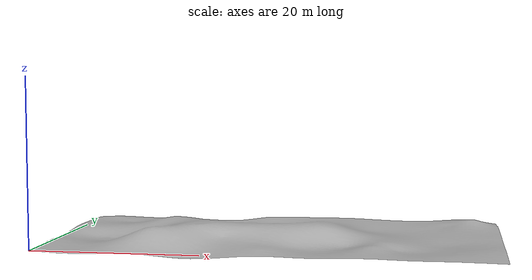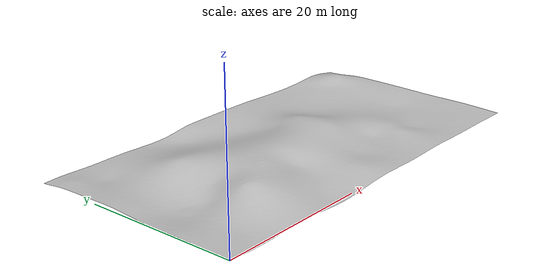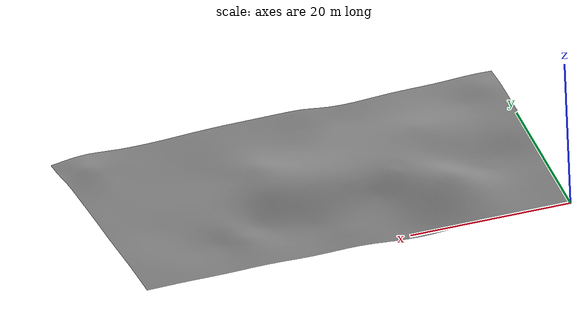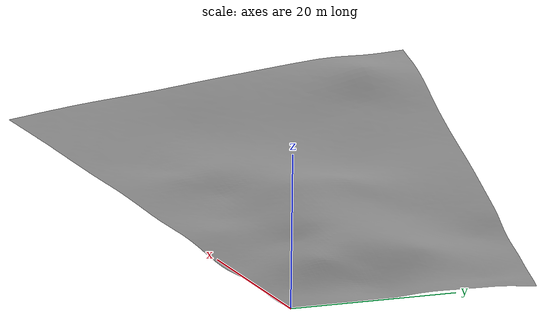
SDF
<?xml version='1.0' encoding='UTF8'?>
<sdf version="1.6">
  <model name="terrain">
    <pose>0 0 0 0 0 0</pose>
    <static>true</static>
    <link name="link">
      <visual name="visual">
        <geometry>
          <mesh>
            <uri>model://rover_sim/worlds/TestWorld2/models/terrain/meshes/mesh.dae</uri>
            <scale>1 1 1</scale>
          </mesh>
        </geometry>
      </visual>
      <collision name="collision">
        <geometry>
          <mesh>
            <uri>model://rover_sim/worlds/TestWorld2/models/terrain/meshes/mesh.dae</uri>
            <scale>1 1 1</scale>
          </mesh>
        </geometry>
      </collision>
    </link>
  </model>
</sdf>
